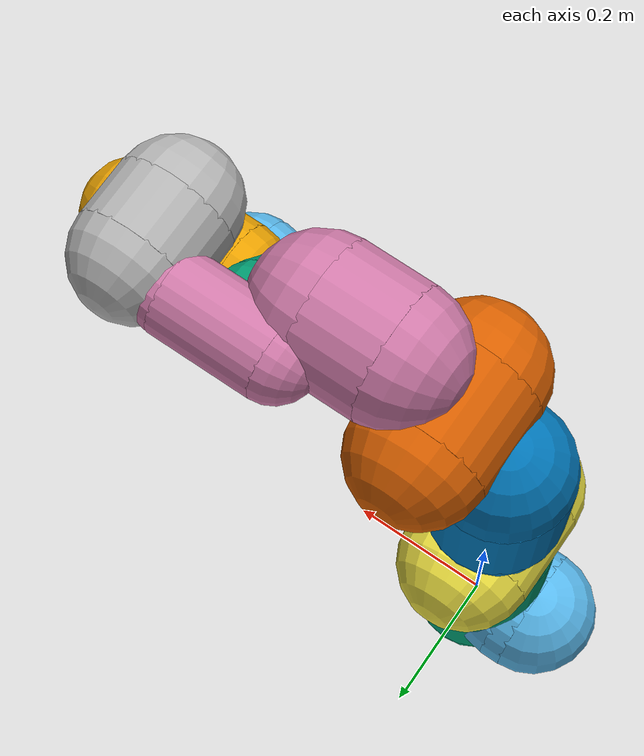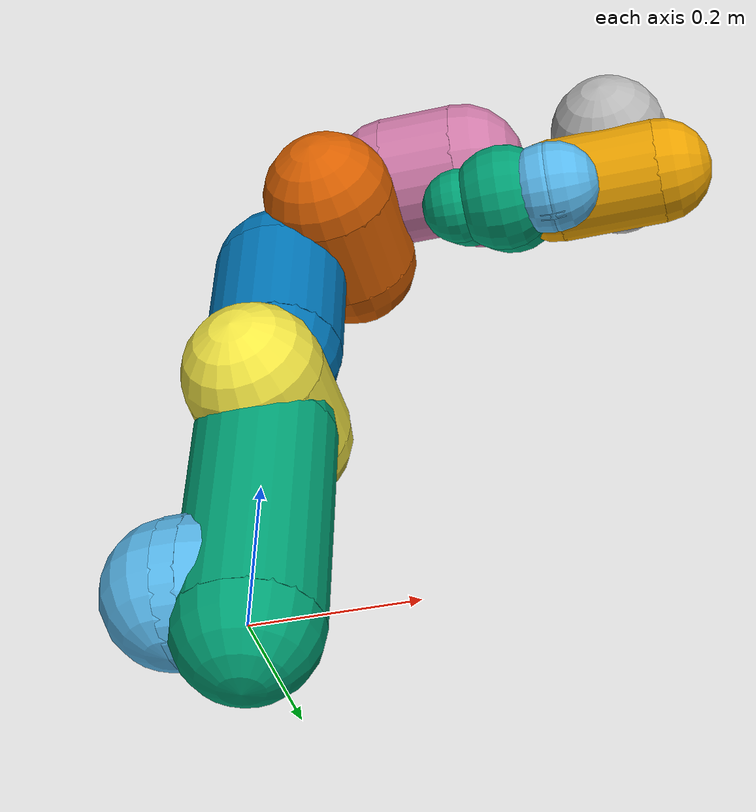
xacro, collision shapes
<?xml version="1.0" ?>
<!-- |    This document was autogenerated by xacro from /home/aswath/umd/661/ENPM-661/Project4/catkin_ws/src/franka_ros/franka_description/robots/panda_arm_hand.urdf.xacro | -->
<!-- |    EDITING THIS FILE BY HAND IS NOT RECOMMENDED                                 | -->

<robot name="panda">
<link name="world" />
  <joint name="fixed" type="fixed">
    <parent link="world"/>
    <child link="panda_link0"/>
  </joint>

    <link name="panda_link0">
        <visual>
            <geometry>
                <mesh filename="package://franka_description/meshes/visual/link0.dae" />
            </geometry>
        </visual>
        <collision>
            <origin rpy="0 1.5707963267948966 0" xyz="-0.075 0 0.06" />
            <geometry>
                <cylinder length="0.03" radius="0.09" />
            </geometry>
        </collision>
        <collision>
            <origin rpy="0 0 0" xyz="-0.06 0 0.06" />
            <geometry>
                <sphere radius="0.09" />
            </geometry>
        </collision>
        <collision>
            <origin rpy="0 0 0" xyz="-0.09 0 0.06" />
            <geometry>
                <sphere radius="0.09" />
            </geometry>
        </collision>

<inertial>
            <mass value="0.1" />
            <inertia ixx="0.03" iyy="0.03" izz="0.03" ixy="0.0" ixz="0.0" iyz="0.0" />
        </inertial>

    </link>
    <link name="panda_link1">
        <visual>
            <geometry>
                <mesh filename="package://franka_description/meshes/visual/link1.dae" />
            </geometry>
        </visual>
        <collision>
            <origin rpy="0 0 0" xyz="0 0 -0.1915" />
            <geometry>
                <cylinder length="0.2830" radius="0.09" />
            </geometry>
        </collision>
        <collision>
            <origin rpy="0 0 0" xyz="0 0 -0.333" />
            <geometry>
                <sphere radius="0.09" />
            </geometry>
        </collision>
        <collision>
            <origin rpy="0 0 0" xyz="0 0 -0.05" />
            <geometry>
                <sphere radius="0.09" />
            </geometry>
        </collision>

<inertial>
            <mass value="0.1" />
            <inertia ixx="0.03" iyy="0.03" izz="0.03" ixy="0.0" ixz="0.0" iyz="0.0" />
        </inertial>

    </link>
    <joint name="panda_joint1" type="revolute">
        <safety_controller k_position="100.0" k_velocity="40.0" soft_lower_limit="-2.8973" soft_upper_limit="2.8973" />
        <origin rpy="0 0 0" xyz="0 0 0.333" />
        <parent link="panda_link0" />
        <child link="panda_link1" />
        <axis xyz="0 0 1" />
        <limit effort="87" lower="-2.8973" upper="2.8973" velocity="2.1750" />
    </joint>
    <link name="panda_link2">
        <visual>
            <geometry>
                <mesh filename="package://franka_description/meshes/visual/link2.dae" />
            </geometry>
        </visual>
        <collision>
            <origin rpy="0 0 0" xyz="0 0 0" />
            <geometry>
                <cylinder length="0.12" radius="0.09" />
            </geometry>
        </collision>
        <collision>
            <origin rpy="0 0 0" xyz="0 0 -0.06" />
            <geometry>
                <sphere radius="0.09" />
            </geometry>
        </collision>
        <collision>
            <origin rpy="0 0 0" xyz="0 0 0.06" />
            <geometry>
                <sphere radius="0.09" />
            </geometry>
        </collision>

<inertial>
            <mass value="0.1" />
            <inertia ixx="0.03" iyy="0.03" izz="0.03" ixy="0.0" ixz="0.0" iyz="0.0" />
        </inertial>

    </link>
    <joint name="panda_joint2" type="revolute">
        <safety_controller k_position="100.0" k_velocity="40.0" soft_lower_limit="-1.7628" soft_upper_limit="1.7628" />
        <origin rpy="-1.5707963267948966 0 0" xyz="0 0 0" />
        <parent link="panda_link1" />
        <child link="panda_link2" />
        <axis xyz="0 0 1" />
        <limit effort="87" lower="-1.7628" upper="1.7628" velocity="2.1750" />
    </joint>
    <link name="panda_link3">
        <visual>
            <geometry>
                <mesh filename="package://franka_description/meshes/visual/link3.dae" />
            </geometry>
        </visual>
        <collision>
            <origin rpy="0 0 0" xyz="0 0 -0.145" />
            <geometry>
                <cylinder length="0.15" radius="0.09" />
            </geometry>
        </collision>
        <collision>
            <origin rpy="0 0 0" xyz="0 0 -0.22" />
            <geometry>
                <sphere radius="0.09" />
            </geometry>
        </collision>
        <collision>
            <origin rpy="0 0 0" xyz="0 0 -0.07" />
            <geometry>
                <sphere radius="0.09" />
            </geometry>
        </collision>

<inertial>
            <mass value="0.1" />
            <inertia ixx="0.03" iyy="0.03" izz="0.03" ixy="0.0" ixz="0.0" iyz="0.0" />
        </inertial>

    </link>
    <joint name="panda_joint3" type="revolute">
        <safety_controller k_position="100.0" k_velocity="40.0" soft_lower_limit="-2.8973" soft_upper_limit="2.8973" />
        <origin rpy="1.5707963267948966 0 0" xyz="0 -0.316 0" />
        <parent link="panda_link2" />
        <child link="panda_link3" />
        <axis xyz="0 0 1" />
        <limit effort="87" lower="-2.8973" upper="2.8973" velocity="2.1750" />
    </joint>
    <link name="panda_link4">
        <visual>
            <geometry>
                <mesh filename="package://franka_description/meshes/visual/link4.dae" />
            </geometry>
        </visual>
        <collision>
            <origin rpy="0 0 0" xyz="0 0 0" />
            <geometry>
                <cylinder length="0.12" radius="0.09" />
            </geometry>
        </collision>
        <collision>
            <origin rpy="0 0 0" xyz="0 0 0.06" />
            <geometry>
                <sphere radius="0.09" />
            </geometry>
        </collision>
        <collision>
            <origin rpy="0 0 0" xyz="0 0 -0.06" />
            <geometry>
                <sphere radius="0.09" />
            </geometry>
        </collision>

<inertial>
            <mass value="0.1" />
            <inertia ixx="0.03" iyy="0.03" izz="0.03" ixy="0.0" ixz="0.0" iyz="0.0" />
        </inertial>

    </link>
    <joint name="panda_joint4" type="revolute">
        <safety_controller k_position="100.0" k_velocity="40.0" soft_lower_limit="-3.0718" soft_upper_limit="-0.0698" />
        <origin rpy="1.5707963267948966 0 0" xyz="0.0825 0 0" />
        <parent link="panda_link3" />
        <child link="panda_link4" />
        <axis xyz="0 0 1" />
        <limit effort="87" lower="-3.0718" upper="-0.0698" velocity="2.1750" />
    </joint>
    <link name="panda_link5">
        <visual>
            <geometry>
                <mesh filename="package://franka_description/meshes/visual/link5.dae" />
            </geometry>
        </visual>
        <collision>
            <origin rpy="0 0 0" xyz="0 0 -0.26" />
            <geometry>
                <cylinder length="0.1" radius="0.09" />
            </geometry>
        </collision>
        <collision>
            <origin rpy="0 0 0" xyz="0 0 -0.31" />
            <geometry>
                <sphere radius="0.09" />
            </geometry>
        </collision>
        <collision>
            <origin rpy="0 0 0" xyz="0 0 -0.21" />
            <geometry>
                <sphere radius="0.09" />
            </geometry>
        </collision>
        <collision>
            <origin rpy="0 0 0" xyz="0 0.08 -0.13" />
            <geometry>
                <cylinder length="0.14" radius="0.055" />
            </geometry>
        </collision>
        <collision>
            <origin rpy="0 0 0" xyz="0 0.08 -0.06" />
            <geometry>
                <sphere radius="0.055" />
            </geometry>
        </collision>
        <collision>
            <origin rpy="0 0 0" xyz="0 0.08 -0.20" />
            <geometry>
                <sphere radius="0.055" />
            </geometry>
        </collision>

<inertial>
            <mass value="0.1" />
            <inertia ixx="0.03" iyy="0.03" izz="0.03" ixy="0.0" ixz="0.0" iyz="0.0" />
        </inertial>

    </link>
    <joint name="panda_joint5" type="revolute">
        <safety_controller k_position="100.0" k_velocity="40.0" soft_lower_limit="-2.8973" soft_upper_limit="2.8973" />
        <origin rpy="-1.5707963267948966 0 0" xyz="-0.0825 0.384 0" />
        <parent link="panda_link4" />
        <child link="panda_link5" />
        <axis xyz="0 0 1" />
        <limit effort="12" lower="-2.8973" upper="2.8973" velocity="2.6100" />
    </joint>
    <link name="panda_link6">
        <visual>
            <geometry>
                <mesh filename="package://franka_description/meshes/visual/link6.dae" />
            </geometry>
        </visual>
        <collision>
            <origin rpy="0 0 0" xyz="0 0 -0.03" />
            <geometry>
                <cylinder length="0.08" radius="0.08" />
            </geometry>
        </collision>
        <collision>
            <origin rpy="0 0 0" xyz="0 0 0.01" />
            <geometry>
                <sphere radius="0.08" />
            </geometry>
        </collision>
        <collision>
            <origin rpy="0 0 0" xyz="0 0 -0.07" />
            <geometry>
                <sphere radius="0.08" />
            </geometry>
        </collision>

<inertial>
            <mass value="0.1" />
            <inertia ixx="0.03" iyy="0.03" izz="0.03" ixy="0.0" ixz="0.0" iyz="0.0" />
        </inertial>

    </link>
    <joint name="panda_joint6" type="revolute">
        <safety_controller k_position="100.0" k_velocity="40.0" soft_lower_limit="-0.0175" soft_upper_limit="3.7525" />
        <origin rpy="1.5707963267948966 0 0" xyz="0 0 0" />
        <parent link="panda_link5" />
        <child link="panda_link6" />
        <axis xyz="0 0 1" />
        <limit effort="12" lower="-0.0175" upper="3.7525" velocity="2.6100" />
    </joint>
    <link name="panda_link7">
        <visual>
            <geometry>
                <mesh filename="package://franka_description/meshes/visual/link7.dae" />
            </geometry>
        </visual>
        <collision>
            <origin rpy="0 0 0" xyz="0 0 0.01" />
            <geometry>
                <cylinder length="0.14" radius="0.07" />
            </geometry>
        </collision>
        <collision>
            <origin rpy="0 0 0" xyz="0 0 0.08" />
            <geometry>
                <sphere radius="0.07" />
            </geometry>
        </collision>
        <collision>
            <origin rpy="0 0 0" xyz="0 0 -0.06" />
            <geometry>
                <sphere radius="0.07" />
            </geometry>
        </collision>

<inertial>
            <mass value="0.1" />
            <inertia ixx="0.03" iyy="0.03" izz="0.03" ixy="0.0" ixz="0.0" iyz="0.0" />
        </inertial>

    </link>
    <joint name="panda_joint7" type="revolute">
        <safety_controller k_position="100.0" k_velocity="40.0" soft_lower_limit="-2.8973" soft_upper_limit="2.8973" />
        <origin rpy="1.5707963267948966 0 0" xyz="0.088 0 0" />
        <parent link="panda_link6" />
        <child link="panda_link7" />
        <axis xyz="0 0 1" />
        <limit effort="12" lower="-2.8973" upper="2.8973" velocity="2.6100" />
    </joint>
    <link name="panda_link8">
        <collision>
            <origin rpy="3.141592653589793 1.5707963267948966 1.5707963267948966" xyz="0.0424 0.0424 -0.0250" />
            <geometry>
                <cylinder length="0.01" radius="0.06" />
            </geometry>
        </collision>
        <collision>
            <origin rpy="0 0 0" xyz="0.0424 0.0424 -0.02" />
            <geometry>
                <sphere radius="0.06" />
            </geometry>
        </collision>
        <collision>
            <origin rpy="0 0 0" xyz="0.0424 0.0424 -0.03" />
            <geometry>
                <sphere radius="0.06" />
            </geometry>
        </collision>

<inertial>
            <mass value="0.1" />
            <inertia ixx="0.03" iyy="0.03" izz="0.03" ixy="0.0" ixz="0.0" iyz="0.0" />
        </inertial>

    </link>
    <joint name="panda_joint8" type="fixed">
        <origin rpy="0 0 0" xyz="0 0 0.107" />
        <parent link="panda_link7" />
        <child link="panda_link8" />
    </joint>
    <joint name="panda_hand_joint" type="fixed">
        <parent link="panda_link8" />
        <child link="panda_hand" />
        <origin rpy="0 0 -0.7853981633974483" xyz="0 0 0" />
    </joint>
    <link name="panda_hand">
        <visual>
            <geometry>
                <mesh filename="package://franka_description/meshes/visual/hand.dae" />
            </geometry>
        </visual>
        <collision>
            <origin rpy="0 1.5707963267948966 1.5707963267948966" xyz="0 0 0.04" />
            <geometry>
                <cylinder length="0.1" radius="0.07" />
            </geometry>
        </collision>
        <collision>
            <origin rpy="0 0 0" xyz="0 -0.05 0.04" />
            <geometry>
                <sphere radius="0.07" />
            </geometry>
        </collision>
        <collision>
            <origin rpy="0 0 0" xyz="0 0.05 0.04" />
            <geometry>
                <sphere radius="0.07" />
            </geometry>
        </collision>
        <collision>
            <origin rpy="0 1.5707963267948966 1.5707963267948966" xyz="0 0 0.1" />
            <geometry>
                <cylinder length="0.1" radius="0.05" />
            </geometry>
        </collision>
        <collision>
            <origin rpy="0 0 0" xyz="0 -0.05 0.1" />
            <geometry>
                <sphere radius="0.05" />
            </geometry>
        </collision>
        <collision>
            <origin rpy="0 0 0" xyz="0 0.05 0.1" />
            <geometry>
                <sphere radius="0.05" />
            </geometry>
        </collision>

<inertial>
            <mass value="0.1" />
            <inertia ixx="0.03" iyy="0.03" izz="0.03" ixy="0.0" ixz="0.0" iyz="0.0" />
        </inertial>

    </link>
    <link name="panda_leftfinger">
        <visual>
            <geometry>
                <mesh filename="package://franka_description/meshes/visual/finger.dae" />
            </geometry>
        </visual>

        <collision>
      <origin xyz="0 0 0" rpy="0 0 0" />
      <geometry>
        <cylinder length="${0.0}" radius="${0.0}" />
      </geometry>
    </collision>

        <inertial>
        <origin xyz="0 0 0" rpy="0 0 0" />
        <mass value="1" />
        <inertia
          ixx="0.0" ixy="0.0" ixz="0.0"
          iyy="0.0" iyz="0.0"
          izz="0.0" />
    </inertial>
    </link>

    <link name="panda_rightfinger">
        <visual>
            <origin rpy="0 0 3.141592653589793" xyz="0 0 0" />
            <geometry>
                <mesh filename="package://franka_description/meshes/visual/finger.dae" />
            </geometry>
        </visual>

<collision>
      <origin xyz="0 0 0" rpy="0 0 0" />
      <geometry>
        <cylinder length="${0.0}" radius="${0.0}" />
      </geometry>
    </collision>

 <inertial>
        <origin xyz="0 0 0" rpy="0 0 0" />
        <mass value="1" />
        <inertia
          ixx="0.0" ixy="0.0" ixz="0.0"
          iyy="0.0" iyz="0.0"
          izz="0.0" />
    </inertial>

    </link>

    <joint name="panda_finger_joint1" type="prismatic">
        <parent link="panda_hand" />
        <child link="panda_leftfinger" />
        <origin rpy="0 0 0" xyz="0 0 0.0584" />
        <axis xyz="0 1 0" />
        <limit effort="20" lower="0.0" upper="0.04" velocity="0.2" />
    </joint>

    <joint name="panda_finger_joint2" type="prismatic">
        <parent link="panda_hand" />
        <child link="panda_rightfinger" />
        <origin rpy="0 0 0" xyz="0 0 0.0584" />
        <axis xyz="0 -1 0" />
        <limit effort="20" lower="0.0" upper="0.04" velocity="0.2" />
        <mimic joint="panda_finger_joint1" />
    </joint>

<transmission name="trans_panda_joint1">
        <type>transmission_interface/SimpleTransmission</type>
        <joint name="panda_joint1">
            <hardwareInterface>hardware_interface/EffortJointInterface</hardwareInterface>
        </joint>
        <actuator name="panda_joint1_motor">
            <hardwareInterface>hardware_interface/EffortJointInterface</hardwareInterface>
            <mechanicalReduction>1</mechanicalReduction>
        </actuator>
    </transmission>
    <transmission name="trans_panda_joint2">
        <type>transmission_interface/SimpleTransmission</type>
        <joint name="panda_joint2">
            <hardwareInterface>hardware_interface/EffortJointInterface</hardwareInterface>
        </joint>
        <actuator name="panda_joint2_motor">
            <hardwareInterface>hardware_interface/EffortJointInterface</hardwareInterface>
            <mechanicalReduction>1</mechanicalReduction>
        </actuator>
    </transmission>
    <transmission name="trans_panda_joint3">
        <type>transmission_interface/SimpleTransmission</type>
        <joint name="panda_joint3">
            <hardwareInterface>hardware_interface/EffortJointInterface</hardwareInterface>
        </joint>
        <actuator name="panda_joint3_motor">
            <hardwareInterface>hardware_interface/EffortJointInterface</hardwareInterface>
            <mechanicalReduction>1</mechanicalReduction>
        </actuator>
    </transmission>
    <transmission name="trans_panda_joint4">
        <type>transmission_interface/SimpleTransmission</type>
        <joint name="panda_joint4">
            <hardwareInterface>hardware_interface/EffortJointInterface</hardwareInterface>
        </joint>
        <actuator name="panda_joint4_motor">
            <hardwareInterface>hardware_interface/EffortJointInterface</hardwareInterface>
            <mechanicalReduction>1</mechanicalReduction>
        </actuator>
    </transmission>
    <transmission name="trans_panda_joint5">
        <type>transmission_interface/SimpleTransmission</type>
        <joint name="panda_joint5">
            <hardwareInterface>hardware_interface/EffortJointInterface</hardwareInterface>
        </joint>
        <actuator name="panda_joint5_motor">
            <hardwareInterface>hardware_interface/EffortJointInterface</hardwareInterface>
            <mechanicalReduction>1</mechanicalReduction>
        </actuator>
    </transmission>
    <transmission name="trans_panda_joint6">
        <type>transmission_interface/SimpleTransmission</type>
        <joint name="panda_joint6">
            <hardwareInterface>hardware_interface/EffortJointInterface</hardwareInterface>
        </joint>
        <actuator name="panda_joint6_motor">
            <hardwareInterface>hardware_interface/EffortJointInterface</hardwareInterface>
            <mechanicalReduction>1</mechanicalReduction>
        </actuator>
    </transmission>
    <transmission name="trans_panda_joint7">
        <type>transmission_interface/SimpleTransmission</type>
        <joint name="panda_joint7">
            <hardwareInterface>hardware_interface/EffortJointInterface</hardwareInterface>
        </joint>
        <actuator name="panda_joint7_motor">
            <hardwareInterface>hardware_interface/EffortJointInterface</hardwareInterface>
            <mechanicalReduction>1</mechanicalReduction>
        </actuator>
    </transmission>
    <transmission name="trans_panda_finger_joint1">
        <type>transmission_interface/SimpleTransmission</type>
        <joint name="panda_finger_joint1">
            <hardwareInterface>hardware_interface/EffortJointInterface</hardwareInterface>
        </joint>
        <actuator name="panda_finger_joint1_motor">
            <hardwareInterface>hardware_interface/EffortJointInterface</hardwareInterface>
            <mechanicalReduction>1</mechanicalReduction>
        </actuator>
    </transmission>
    <transmission name="trans_panda_finger_joint2">
        <type>transmission_interface/SimpleTransmission</type>
        <joint name="panda_finger_joint2">
            <hardwareInterface>hardware_interface/EffortJointInterface</hardwareInterface>
        </joint>
        <actuator name="panda_finger_joint2_motor">
            <hardwareInterface>hardware_interface/EffortJointInterface</hardwareInterface>
            <mechanicalReduction>1</mechanicalReduction>
        </actuator>
    </transmission>
    <gazebo>
        <plugin name="gazebo_ros_control" filename="libgazebo_ros_control.so">
            <robotNamespace>/</robotNamespace>
        </plugin>
    </gazebo>
</robot>
